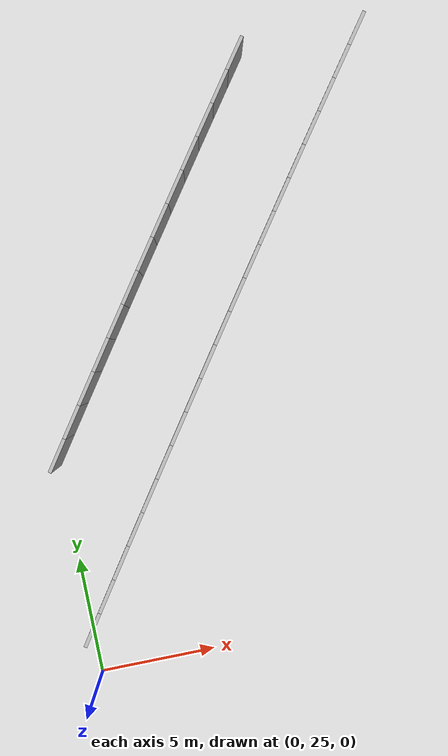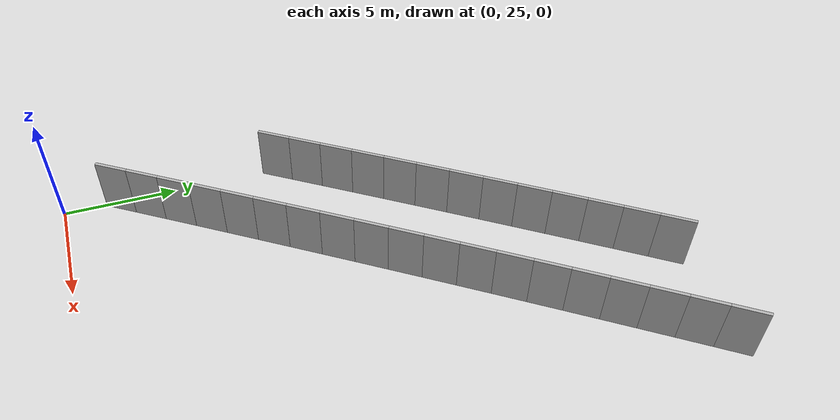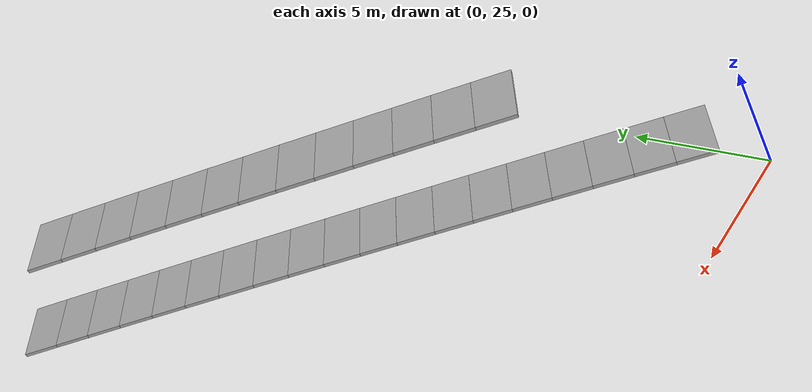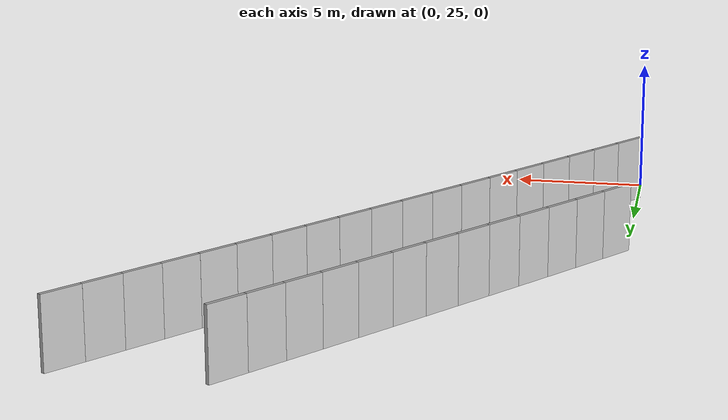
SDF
<?xml version="1.0" ?>
<sdf version="1.6">
  <model name="sps_0636">
    <pose frame="">0 0 0 0 -0 0</pose>
    <static>1</static>
    <self_collide>0</self_collide>
    <allow_auto_disable>0</allow_auto_disable>
    <link name="Wall4810">
      <kinematic>0</kinematic>
      <gravity>1</gravity>
      <self_collide>0</self_collide>
      <collision name="collision">
        <geometry>
          <box>
            <size>1.49638 0.15 2.5</size>
          </box>
        </geometry>
        <pose frame="">0 0 0 0 -0 0</pose>
      </collision>
      <visual name="visual">
        <geometry>
          <box>
            <size>1.49638 0.15 2.5</size>
          </box>
        </geometry>
        <pose frame="">0 0 0 0 -0 0</pose>
        <cast_shadows>1</cast_shadows>
        <transparency>0.0</transparency>
      </visual>
      <pose frame="">15.9676 49.5193 1.25 0 0 -2.20116</pose>
    </link>
    <link name="Wall4811">
      <kinematic>0</kinematic>
      <gravity>1</gravity>
      <self_collide>0</self_collide>
      <collision name="collision">
        <geometry>
          <box>
            <size>1.49655 0.15 2.5</size>
          </box>
        </geometry>
        <pose frame="">0 0 0 0 -0 0</pose>
      </collision>
      <visual name="visual">
        <geometry>
          <box>
            <size>1.49655 0.15 2.5</size>
          </box>
        </geometry>
        <pose frame="">0 0 0 0 -0 0</pose>
        <cast_shadows>1</cast_shadows>
        <transparency>0.0</transparency>
      </visual>
      <pose frame="">15.0864 48.3098 1.25 0 0 -2.19971</pose>
    </link>
    <link name="Wall4812">
      <kinematic>0</kinematic>
      <gravity>1</gravity>
      <self_collide>0</self_collide>
      <collision name="collision">
        <geometry>
          <box>
            <size>1.49657 0.15 2.5</size>
          </box>
        </geometry>
        <pose frame="">0 0 0 0 -0 0</pose>
      </collision>
      <visual name="visual">
        <geometry>
          <box>
            <size>1.49657 0.15 2.5</size>
          </box>
        </geometry>
        <pose frame="">0 0 0 0 -0 0</pose>
        <cast_shadows>1</cast_shadows>
        <transparency>0.0</transparency>
      </visual>
      <pose frame="">14.2071 47.0988 1.25 0 0 -2.19793</pose>
    </link>
    <link name="Wall4813">
      <kinematic>0</kinematic>
      <gravity>1</gravity>
      <self_collide>0</self_collide>
      <collision name="collision">
        <geometry>
          <box>
            <size>1.49641 0.15 2.5</size>
          </box>
        </geometry>
        <pose frame="">0 0 0 0 -0 0</pose>
      </collision>
      <visual name="visual">
        <geometry>
          <box>
            <size>1.49641 0.15 2.5</size>
          </box>
        </geometry>
        <pose frame="">0 0 0 0 -0 0</pose>
        <cast_shadows>1</cast_shadows>
        <transparency>0.0</transparency>
      </visual>
      <pose frame="">13.3299 45.8864 1.25 0 0 -2.19646</pose>
    </link>
    <link name="Wall4814">
      <kinematic>0</kinematic>
      <gravity>1</gravity>
      <self_collide>0</self_collide>
      <collision name="collision">
        <geometry>
          <box>
            <size>1.49663 0.15 2.5</size>
          </box>
        </geometry>
        <pose frame="">0 0 0 0 -0 0</pose>
      </collision>
      <visual name="visual">
        <geometry>
          <box>
            <size>1.49663 0.15 2.5</size>
          </box>
        </geometry>
        <pose frame="">0 0 0 0 -0 0</pose>
        <cast_shadows>1</cast_shadows>
        <transparency>0.0</transparency>
      </visual>
      <pose frame="">12.4545 44.6726 1.25 0 0 -2.19479</pose>
    </link>
    <link name="Wall4815">
      <kinematic>0</kinematic>
      <gravity>1</gravity>
      <self_collide>0</self_collide>
      <collision name="collision">
        <geometry>
          <box>
            <size>1.49652 0.15 2.5</size>
          </box>
        </geometry>
        <pose frame="">0 0 0 0 -0 0</pose>
      </collision>
      <visual name="visual">
        <geometry>
          <box>
            <size>1.49652 0.15 2.5</size>
          </box>
        </geometry>
        <pose frame="">0 0 0 0 -0 0</pose>
        <cast_shadows>1</cast_shadows>
        <transparency>0.0</transparency>
      </visual>
      <pose frame="">11.581 43.4574 1.25 0 0 -2.19328</pose>
    </link>
    <link name="Wall4816">
      <kinematic>0</kinematic>
      <gravity>1</gravity>
      <self_collide>0</self_collide>
      <collision name="collision">
        <geometry>
          <box>
            <size>1.49667 0.15 2.5</size>
          </box>
        </geometry>
        <pose frame="">0 0 0 0 -0 0</pose>
      </collision>
      <visual name="visual">
        <geometry>
          <box>
            <size>1.49667 0.15 2.5</size>
          </box>
        </geometry>
        <pose frame="">0 0 0 0 -0 0</pose>
        <cast_shadows>1</cast_shadows>
        <transparency>0.0</transparency>
      </visual>
      <pose frame="">10.7093 42.2409 1.25 0 0 -2.19181</pose>
    </link>
    <link name="Wall4817">
      <kinematic>0</kinematic>
      <gravity>1</gravity>
      <self_collide>0</self_collide>
      <collision name="collision">
        <geometry>
          <box>
            <size>1.4963 0.15 2.5</size>
          </box>
        </geometry>
        <pose frame="">0 0 0 0 -0 0</pose>
      </collision>
      <visual name="visual">
        <geometry>
          <box>
            <size>1.4963 0.15 2.5</size>
          </box>
        </geometry>
        <pose frame="">0 0 0 0 -0 0</pose>
        <cast_shadows>1</cast_shadows>
        <transparency>0.0</transparency>
      </visual>
      <pose frame="">9.83953 41.0231 1.25 0 0 -2.19013</pose>
    </link>
    <link name="Wall4818">
      <kinematic>0</kinematic>
      <gravity>1</gravity>
      <self_collide>0</self_collide>
      <collision name="collision">
        <geometry>
          <box>
            <size>1.49653 0.15 2.5</size>
          </box>
        </geometry>
        <pose frame="">0 0 0 0 -0 0</pose>
      </collision>
      <visual name="visual">
        <geometry>
          <box>
            <size>1.49653 0.15 2.5</size>
          </box>
        </geometry>
        <pose frame="">0 0 0 0 -0 0</pose>
        <cast_shadows>1</cast_shadows>
        <transparency>0.0</transparency>
      </visual>
      <pose frame="">8.97185 39.8039 1.25 0 0 -2.18852</pose>
    </link>
    <link name="Wall4819">
      <kinematic>0</kinematic>
      <gravity>1</gravity>
      <self_collide>0</self_collide>
      <collision name="collision">
        <geometry>
          <box>
            <size>1.4967 0.15 2.5</size>
          </box>
        </geometry>
        <pose frame="">0 0 0 0 -0 0</pose>
      </collision>
      <visual name="visual">
        <geometry>
          <box>
            <size>1.4967 0.15 2.5</size>
          </box>
        </geometry>
        <pose frame="">0 0 0 0 -0 0</pose>
        <cast_shadows>1</cast_shadows>
        <transparency>0.0</transparency>
      </visual>
      <pose frame="">8.10598 38.5832 1.25 0 0 -2.18699</pose>
    </link>
    <link name="Wall4820">
      <kinematic>0</kinematic>
      <gravity>1</gravity>
      <self_collide>0</self_collide>
      <collision name="collision">
        <geometry>
          <box>
            <size>1.49641 0.15 2.5</size>
          </box>
        </geometry>
        <pose frame="">0 0 0 0 -0 0</pose>
      </collision>
      <visual name="visual">
        <geometry>
          <box>
            <size>1.49641 0.15 2.5</size>
          </box>
        </geometry>
        <pose frame="">0 0 0 0 -0 0</pose>
        <cast_shadows>1</cast_shadows>
        <transparency>0.0</transparency>
      </visual>
      <pose frame="">7.24206 37.3612 1.25 0 0 -2.18537</pose>
    </link>
    <link name="Wall4821">
      <kinematic>0</kinematic>
      <gravity>1</gravity>
      <self_collide>0</self_collide>
      <collision name="collision">
        <geometry>
          <box>
            <size>1.49662 0.15 2.5</size>
          </box>
        </geometry>
        <pose frame="">0 0 0 0 -0 0</pose>
      </collision>
      <visual name="visual">
        <geometry>
          <box>
            <size>1.49662 0.15 2.5</size>
          </box>
        </geometry>
        <pose frame="">0 0 0 0 -0 0</pose>
        <cast_shadows>1</cast_shadows>
        <transparency>0.0</transparency>
      </visual>
      <pose frame="">6.38015 36.1378 1.25 0 0 -2.18373</pose>
    </link>
    <link name="Wall4822">
      <kinematic>0</kinematic>
      <gravity>1</gravity>
      <self_collide>0</self_collide>
      <collision name="collision">
        <geometry>
          <box>
            <size>1.4965 0.15 2.5</size>
          </box>
        </geometry>
        <pose frame="">0 0 0 0 -0 0</pose>
      </collision>
      <visual name="visual">
        <geometry>
          <box>
            <size>1.4965 0.15 2.5</size>
          </box>
        </geometry>
        <pose frame="">0 0 0 0 -0 0</pose>
        <cast_shadows>1</cast_shadows>
        <transparency>0.0</transparency>
      </visual>
      <pose frame="">5.52016 34.913 1.25 0 0 -2.18219</pose>
    </link>
    <link name="Wall4823">
      <kinematic>0</kinematic>
      <gravity>1</gravity>
      <self_collide>0</self_collide>
      <collision name="collision">
        <geometry>
          <box>
            <size>1.49634 0.15 2.5</size>
          </box>
        </geometry>
        <pose frame="">0 0 0 0 -0 0</pose>
      </collision>
      <visual name="visual">
        <geometry>
          <box>
            <size>1.49634 0.15 2.5</size>
          </box>
        </geometry>
        <pose frame="">0 0 0 0 -0 0</pose>
        <cast_shadows>1</cast_shadows>
        <transparency>0.0</transparency>
      </visual>
      <pose frame="">4.66216 33.687 1.25 0 0 -2.18062</pose>
    </link>
    <link name="Wall4824">
      <kinematic>0</kinematic>
      <gravity>1</gravity>
      <self_collide>0</self_collide>
      <collision name="collision">
        <geometry>
          <box>
            <size>1.49663 0.15 2.5</size>
          </box>
        </geometry>
        <pose frame="">0 0 0 0 -0 0</pose>
      </collision>
      <visual name="visual">
        <geometry>
          <box>
            <size>1.49663 0.15 2.5</size>
          </box>
        </geometry>
        <pose frame="">0 0 0 0 -0 0</pose>
        <cast_shadows>1</cast_shadows>
        <transparency>0.0</transparency>
      </visual>
      <pose frame="">3.80605 32.4596 1.25 0 0 -2.17905</pose>
    </link>
    <link name="Wall4825">
      <kinematic>0</kinematic>
      <gravity>1</gravity>
      <self_collide>0</self_collide>
      <collision name="collision">
        <geometry>
          <box>
            <size>1.49659 0.15 2.5</size>
          </box>
        </geometry>
        <pose frame="">0 0 0 0 -0 0</pose>
      </collision>
      <visual name="visual">
        <geometry>
          <box>
            <size>1.49659 0.15 2.5</size>
          </box>
        </geometry>
        <pose frame="">0 0 0 0 -0 0</pose>
        <cast_shadows>1</cast_shadows>
        <transparency>0.0</transparency>
      </visual>
      <pose frame="">2.95183 31.2307 1.25 0 0 -2.17743</pose>
    </link>
    <link name="Wall4826">
      <kinematic>0</kinematic>
      <gravity>1</gravity>
      <self_collide>0</self_collide>
      <collision name="collision">
        <geometry>
          <box>
            <size>1.49649 0.15 2.5</size>
          </box>
        </geometry>
        <pose frame="">0 0 0 0 -0 0</pose>
      </collision>
      <visual name="visual">
        <geometry>
          <box>
            <size>1.49649 0.15 2.5</size>
          </box>
        </geometry>
        <pose frame="">0 0 0 0 -0 0</pose>
        <cast_shadows>1</cast_shadows>
        <transparency>0.0</transparency>
      </visual>
      <pose frame="">2.09963 30.0005 1.25 0 0 -2.17584</pose>
    </link>
    <link name="Wall4827">
      <kinematic>0</kinematic>
      <gravity>1</gravity>
      <self_collide>0</self_collide>
      <collision name="collision">
        <geometry>
          <box>
            <size>1.49645 0.15 2.5</size>
          </box>
        </geometry>
        <pose frame="">0 0 0 0 -0 0</pose>
      </collision>
      <visual name="visual">
        <geometry>
          <box>
            <size>1.49645 0.15 2.5</size>
          </box>
        </geometry>
        <pose frame="">0 0 0 0 -0 0</pose>
        <cast_shadows>1</cast_shadows>
        <transparency>0.0</transparency>
      </visual>
      <pose frame="">1.24944 28.769 1.25 0 0 -2.17422</pose>
    </link>
    <link name="Wall4828">
      <kinematic>0</kinematic>
      <gravity>1</gravity>
      <self_collide>0</self_collide>
      <collision name="collision">
        <geometry>
          <box>
            <size>1.49666 0.15 2.5</size>
          </box>
        </geometry>
        <pose frame="">0 0 0 0 -0 0</pose>
      </collision>
      <visual name="visual">
        <geometry>
          <box>
            <size>1.49666 0.15 2.5</size>
          </box>
        </geometry>
        <pose frame="">0 0 0 0 -0 0</pose>
        <cast_shadows>1</cast_shadows>
        <transparency>0.0</transparency>
      </visual>
      <pose frame="">0.401145 27.5361 1.25 0 0 -2.17269</pose>
    </link>
    <link name="Wall6608">
      <kinematic>0</kinematic>
      <gravity>1</gravity>
      <self_collide>0</self_collide>
      <collision name="collision">
        <geometry>
          <box>
            <size>1.503 0.15 2.5</size>
          </box>
        </geometry>
        <pose frame="">0 0 0 0 -0 0</pose>
      </collision>
      <visual name="visual">
        <geometry>
          <box>
            <size>1.503 0.15 2.5</size>
          </box>
        </geometry>
        <pose frame="">0 0 0 0 -0 0</pose>
        <cast_shadows>1</cast_shadows>
        <transparency>0.0</transparency>
      </visual>
      <pose frame="">10.8563 49.5288 1.25 0 0 -2.19795</pose>
    </link>
    <link name="Wall6609">
      <kinematic>0</kinematic>
      <gravity>1</gravity>
      <self_collide>0</self_collide>
      <collision name="collision">
        <geometry>
          <box>
            <size>1.50317 0.15 2.5</size>
          </box>
        </geometry>
        <pose frame="">0 0 0 0 -0 0</pose>
      </collision>
      <visual name="visual">
        <geometry>
          <box>
            <size>1.50317 0.15 2.5</size>
          </box>
        </geometry>
        <pose frame="">0 0 0 0 -0 0</pose>
        <cast_shadows>1</cast_shadows>
        <transparency>0.0</transparency>
      </visual>
      <pose frame="">9.97506 48.3111 1.25 0 0 -2.19651</pose>
    </link>
    <link name="Wall6610">
      <kinematic>0</kinematic>
      <gravity>1</gravity>
      <self_collide>0</self_collide>
      <collision name="collision">
        <geometry>
          <box>
            <size>1.50321 0.15 2.5</size>
          </box>
        </geometry>
        <pose frame="">0 0 0 0 -0 0</pose>
      </collision>
      <visual name="visual">
        <geometry>
          <box>
            <size>1.50321 0.15 2.5</size>
          </box>
        </geometry>
        <pose frame="">0 0 0 0 -0 0</pose>
        <cast_shadows>1</cast_shadows>
        <transparency>0.0</transparency>
      </visual>
      <pose frame="">9.09566 47.092 1.25 0 0 -2.19489</pose>
    </link>
    <link name="Wall6611">
      <kinematic>0</kinematic>
      <gravity>1</gravity>
      <self_collide>0</self_collide>
      <collision name="collision">
        <geometry>
          <box>
            <size>1.50313 0.15 2.5</size>
          </box>
        </geometry>
        <pose frame="">0 0 0 0 -0 0</pose>
      </collision>
      <visual name="visual">
        <geometry>
          <box>
            <size>1.50313 0.15 2.5</size>
          </box>
        </geometry>
        <pose frame="">0 0 0 0 -0 0</pose>
        <cast_shadows>1</cast_shadows>
        <transparency>0.0</transparency>
      </visual>
      <pose frame="">8.21825 45.8715 1.25 0 0 -2.19328</pose>
    </link>
    <link name="Wall6612">
      <kinematic>0</kinematic>
      <gravity>1</gravity>
      <self_collide>0</self_collide>
      <collision name="collision">
        <geometry>
          <box>
            <size>1.50295 0.15 2.5</size>
          </box>
        </geometry>
        <pose frame="">0 0 0 0 -0 0</pose>
      </collision>
      <visual name="visual">
        <geometry>
          <box>
            <size>1.50295 0.15 2.5</size>
          </box>
        </geometry>
        <pose frame="">0 0 0 0 -0 0</pose>
        <cast_shadows>1</cast_shadows>
        <transparency>0.0</transparency>
      </visual>
      <pose frame="">7.34286 44.6497 1.25 0 0 -2.19172</pose>
    </link>
    <link name="Wall6613">
      <kinematic>0</kinematic>
      <gravity>1</gravity>
      <self_collide>0</self_collide>
      <collision name="collision">
        <geometry>
          <box>
            <size>1.50321 0.15 2.5</size>
          </box>
        </geometry>
        <pose frame="">0 0 0 0 -0 0</pose>
      </collision>
      <visual name="visual">
        <geometry>
          <box>
            <size>1.50321 0.15 2.5</size>
          </box>
        </geometry>
        <pose frame="">0 0 0 0 -0 0</pose>
        <cast_shadows>1</cast_shadows>
        <transparency>0.0</transparency>
      </visual>
      <pose frame="">6.46935 43.4265 1.25 0 0 -2.19014</pose>
    </link>
    <link name="Wall6614">
      <kinematic>0</kinematic>
      <gravity>1</gravity>
      <self_collide>0</self_collide>
      <collision name="collision">
        <geometry>
          <box>
            <size>1.50299 0.15 2.5</size>
          </box>
        </geometry>
        <pose frame="">0 0 0 0 -0 0</pose>
      </collision>
      <visual name="visual">
        <geometry>
          <box>
            <size>1.50299 0.15 2.5</size>
          </box>
        </geometry>
        <pose frame="">0 0 0 0 -0 0</pose>
        <cast_shadows>1</cast_shadows>
        <transparency>0.0</transparency>
      </visual>
      <pose frame="">5.59774 42.2019 1.25 0 0 -2.18861</pose>
    </link>
    <link name="Wall6615">
      <kinematic>0</kinematic>
      <gravity>1</gravity>
      <self_collide>0</self_collide>
      <collision name="collision">
        <geometry>
          <box>
            <size>1.50317 0.15 2.5</size>
          </box>
        </geometry>
        <pose frame="">0 0 0 0 -0 0</pose>
      </collision>
      <visual name="visual">
        <geometry>
          <box>
            <size>1.50317 0.15 2.5</size>
          </box>
        </geometry>
        <pose frame="">0 0 0 0 -0 0</pose>
        <cast_shadows>1</cast_shadows>
        <transparency>0.0</transparency>
      </visual>
      <pose frame="">4.72814 40.9759 1.25 0 0 -2.18688</pose>
    </link>
    <link name="Wall6616">
      <kinematic>0</kinematic>
      <gravity>1</gravity>
      <self_collide>0</self_collide>
      <collision name="collision">
        <geometry>
          <box>
            <size>1.503 0.15 2.5</size>
          </box>
        </geometry>
        <pose frame="">0 0 0 0 -0 0</pose>
      </collision>
      <visual name="visual">
        <geometry>
          <box>
            <size>1.503 0.15 2.5</size>
          </box>
        </geometry>
        <pose frame="">0 0 0 0 -0 0</pose>
        <cast_shadows>1</cast_shadows>
        <transparency>0.0</transparency>
      </visual>
      <pose frame="">3.86056 39.7485 1.25 0 0 -2.18531</pose>
    </link>
    <link name="Wall6617">
      <kinematic>0</kinematic>
      <gravity>1</gravity>
      <self_collide>0</self_collide>
      <collision name="collision">
        <geometry>
          <box>
            <size>1.50308 0.15 2.5</size>
          </box>
        </geometry>
        <pose frame="">0 0 0 0 -0 0</pose>
      </collision>
      <visual name="visual">
        <geometry>
          <box>
            <size>1.50308 0.15 2.5</size>
          </box>
        </geometry>
        <pose frame="">0 0 0 0 -0 0</pose>
        <cast_shadows>1</cast_shadows>
        <transparency>0.0</transparency>
      </visual>
      <pose frame="">2.99486 38.5198 1.25 0 0 -2.18384</pose>
    </link>
    <link name="Wall6618">
      <kinematic>0</kinematic>
      <gravity>1</gravity>
      <self_collide>0</self_collide>
      <collision name="collision">
        <geometry>
          <box>
            <size>1.50312 0.15 2.5</size>
          </box>
        </geometry>
        <pose frame="">0 0 0 0 -0 0</pose>
      </collision>
      <visual name="visual">
        <geometry>
          <box>
            <size>1.50312 0.15 2.5</size>
          </box>
        </geometry>
        <pose frame="">0 0 0 0 -0 0</pose>
        <cast_shadows>1</cast_shadows>
        <transparency>0.0</transparency>
      </visual>
      <pose frame="">2.13106 37.2897 1.25 0 0 -2.18218</pose>
    </link>
    <link name="Wall6619">
      <kinematic>0</kinematic>
      <gravity>1</gravity>
      <self_collide>0</self_collide>
      <collision name="collision">
        <geometry>
          <box>
            <size>1.5031 0.15 2.5</size>
          </box>
        </geometry>
        <pose frame="">0 0 0 0 -0 0</pose>
      </collision>
      <visual name="visual">
        <geometry>
          <box>
            <size>1.5031 0.15 2.5</size>
          </box>
        </geometry>
        <pose frame="">0 0 0 0 -0 0</pose>
        <cast_shadows>1</cast_shadows>
        <transparency>0.0</transparency>
      </visual>
      <pose frame="">1.26925 36.0582 1.25 0 0 -2.1806</pose>
    </link>
    <link name="Wall6620">
      <kinematic>0</kinematic>
      <gravity>1</gravity>
      <self_collide>0</self_collide>
      <collision name="collision">
        <geometry>
          <box>
            <size>1.50296 0.15 2.5</size>
          </box>
        </geometry>
        <pose frame="">0 0 0 0 -0 0</pose>
      </collision>
      <visual name="visual">
        <geometry>
          <box>
            <size>1.50296 0.15 2.5</size>
          </box>
        </geometry>
        <pose frame="">0 0 0 0 -0 0</pose>
        <cast_shadows>1</cast_shadows>
        <transparency>0.0</transparency>
      </visual>
      <pose frame="">0.409538 34.8253 1.25 0 0 -2.17884</pose>
    </link>
  </model>
</sdf>
